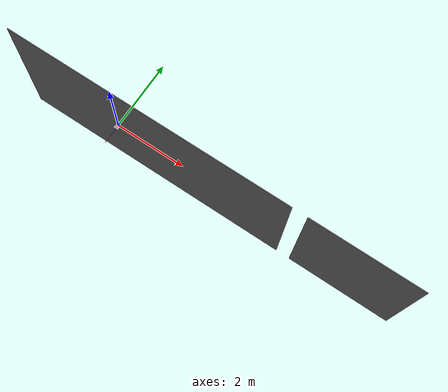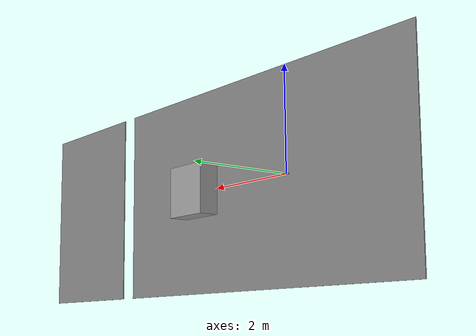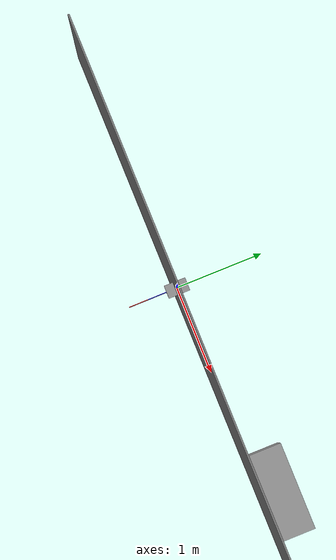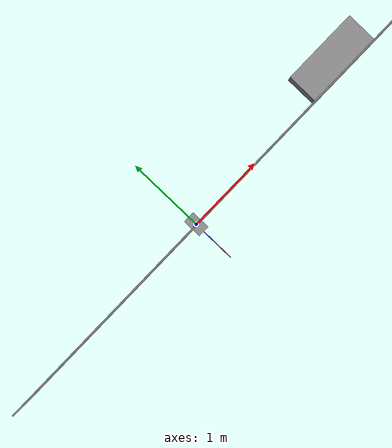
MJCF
<mujoco model="robot_obstacle">

    <!--  set the values -kp^ground and -kd^ground  -->
    <option timestep="0.001" o_solref="-100000 -1000" gravity="0 -9.81 0">
        <flag override="enable"/>
    </option>

    <default>
        <geom contype="1" conaffinity="1" friction="0.5 0 0"/> <!-- slide (dynamic), spin(0), roll (0)-->
        <joint type="hinge" damping="0.5"/> <!-- add joint damping-->
    </default>

    <asset>
        <material name="groundplane" rgba="0.5 0.5 0.5 1"/>
        <material name="gray" rgba="0.6 0.6 0.6 1"/>
        <material name="blue" rgba="0.2 0.2 1 1"/>
        <material name="red" rgba="1 0.2 0.2 1"/>
        <material name="yellow" rgba="1 1 0.3 1"/>
        <material name="green" rgba="0 1 0 0.5"/>
    </asset>

    <worldbody>
        <light pos="0 0 2" dir="0 -1 -1" directional="true"/>

        <!-- GROUND BEFORE GAP: extends from x = -3.0 to x = 5.0 -->
        <body name="floor_front" pos="0 0 0">
            <geom type="box"
                size="4.0 0.01 2"
                pos="1.0 -0.01 0"
                material="groundplane"/>
        </body>

        <!-- GAP: from x = 5.0 to x = 5.4 (0.4m wide) - no floor here -->

        <!-- GROUND AFTER GAP: begins at x = 5.4, extends 3m to x = 8.4 -->
        <body name="floor_back" pos="0 0 0">
            <geom type="box"
                size="1.5 0.01 2"
                pos="6.9 -0.01 0"
                material="groundplane"/>
        </body>

        <!-- Box obstacle: 1m x 0.4m high, centroid at [2.5, 0.2] -->
        <body name="box_obstacle" pos="0 0 0">
            <geom type="box"
                name="obstacle_box"
                size="0.5 0.2 0.5"
                pos="2.5 0.2 0"
                material="gray"/>
        </body>

        <!-- Body (trunk) -->
        <body name="trunk" pos="0 0 0">
            <!-- trunk intertia-->
            <inertial pos="0 0 0" mass="8" diaginertia="0.0567 0.0567 0.0567"/>

            <!-- planar motion of trunk-->
            <joint name="x" type="slide" axis="1 0 0"/>
            <joint name="y" type="slide" axis="0 1 0"/>
            <joint name="theta" type="hinge" axis="0 0 1"/>

            <!-- Trunk geometry (COM) - contype 2 for trunk-->
            <geom name="trunk_geom" type="box" size="0.075 0.125 0.01" material="gray" contype="2" conaffinity="2"/>
            <!-- width=0.15/2=0.075, height=0.25/2=0.125 -->

            <!-- Leg 1 - contype 4, conaffinity 5 (collides with ground=1 and trunk=2) -->
            <body name="leg_1" pos="0 -0.125 0"> <!-- located at base of trunk in Y axis, centered in X-->
                <inertial pos="0 -0.11 0" mass="0.25" diaginertia="0.001 1e-6 0.001"/> <!-- set the mass properties relative to body frame-->
                <joint name="q1" type="hinge" axis="0 0 1" limited="true" range="-120 30"/>
                <geom name="leg_1_geom" type="capsule" fromto="0 0 0 0 -0.22 0" size="0.005" material="blue" contype="4" conaffinity="3"/>

                <!-- leg 2 -->
                <body name="leg_2" pos="0 -0.22 0"> <!-- position relative to parent frame (l1)-->
                    <inertial pos="0 -0.11 0" mass="0.25" diaginertia="0.001 1e-6 0.001"/>
                    <joint name="q2" type="hinge" axis="0 0 1" limited="true" range="0 160"/>
                    <geom name="leg_2_geom" type="capsule" fromto="0 0 0 0 -0.22 0" size="0.005" material="red" contype="4" conaffinity="3"/>
                </body>
            </body>

            <!-- leg 3 - contype 8, conaffinity 9 (collides with ground=1 and trunk=2) -->
            <body name="leg_3" pos="0 -0.125 0">
                <inertial pos="0 -0.11 0" mass="0.25" diaginertia="0.001 1e-6 0.001"/>
                <joint name="q3" type="hinge" axis="0 0 1" limited="true" range="-120 30"/>
                <geom name="leg_3_geom" type="capsule" fromto="0 0 0 0 -0.22 0" size="0.005" material="green" contype="8" conaffinity="3"/>

                <!-- leg 4 -->
                <body name="leg_4" pos="0 -0.22 0">
                    <inertial pos="0 -0.11 0" mass="0.25" diaginertia="0.001 1e-6 0.001"/>
                    <joint name="q4" type="hinge" axis="0 0 1" limited="true" range="0 160"/>
                    <geom name="leg_4_geom" type="capsule" fromto="0 0 0 0 -0.22 0" size="0.005" material="yellow" contype="8" conaffinity="3"/>
                </body>
            </body>
        </body>
    </worldbody>

    <actuator>
        <!-- assign actuatores to joints -->
        <motor name="act_q1" joint="q1" gear="1"/>
        <motor name="act_q2" joint="q2" gear="1"/>
        <motor name="act_q3" joint="q3" gear="1"/>
        <motor name="act_q4" joint="q4" gear="1"/>
    </actuator>

</mujoco>
